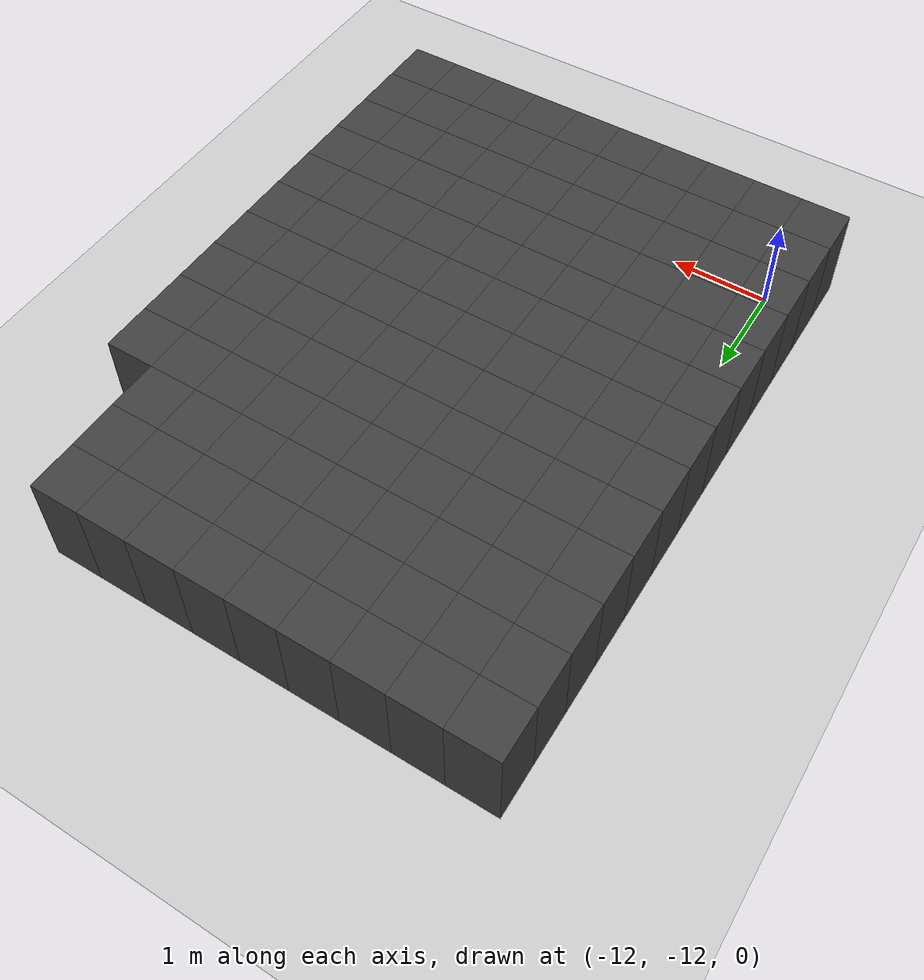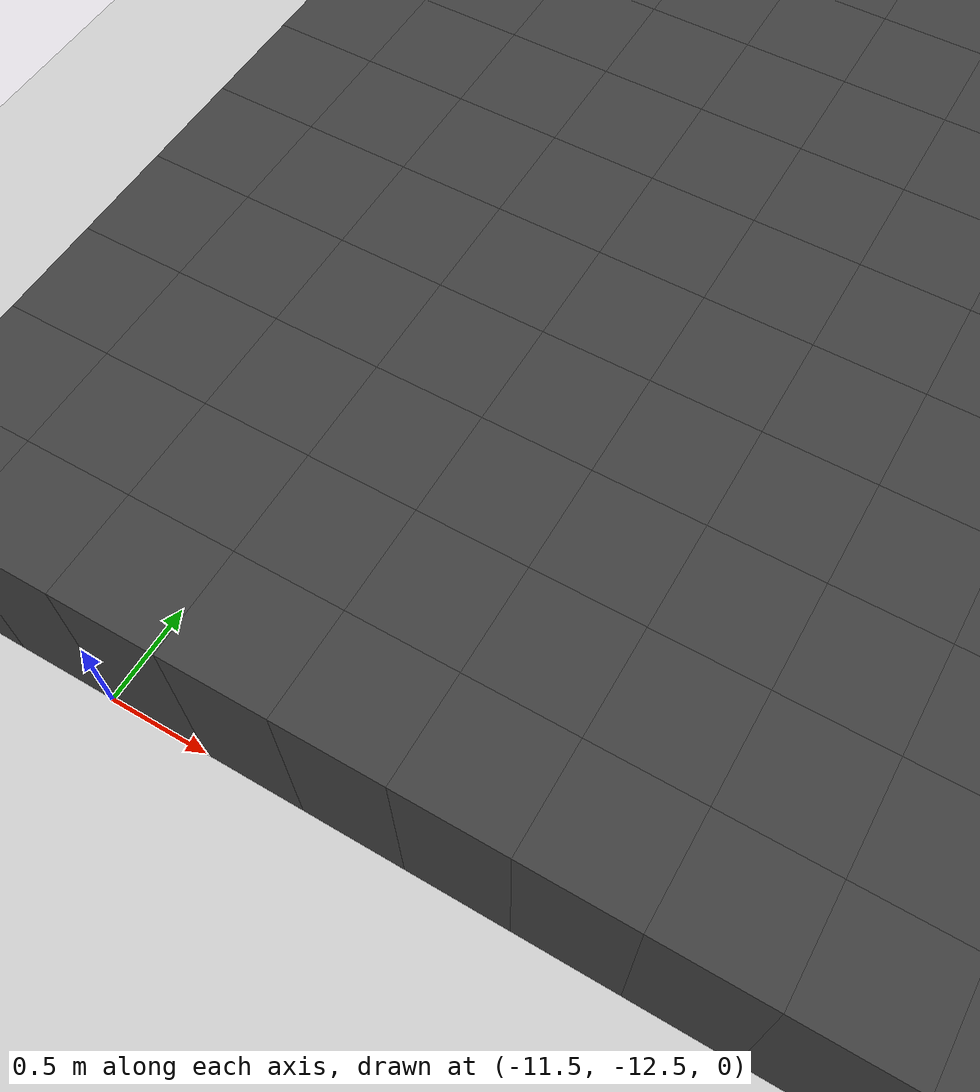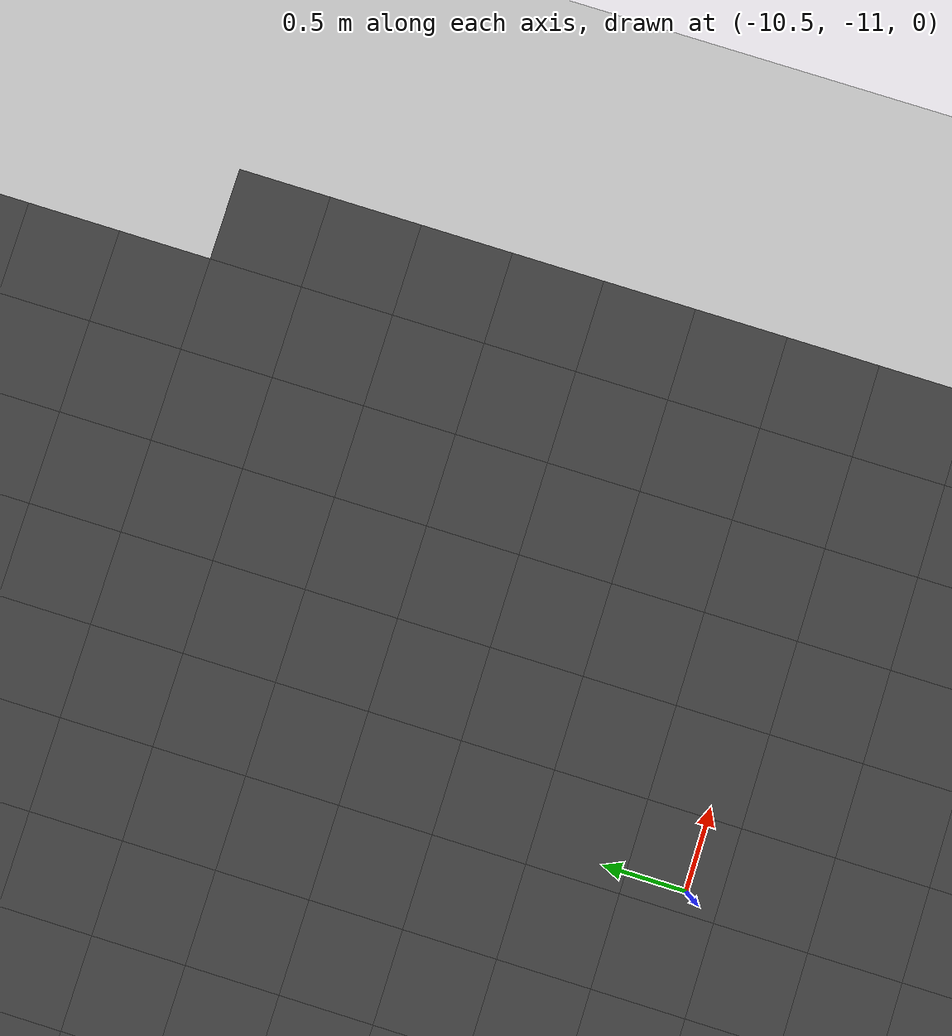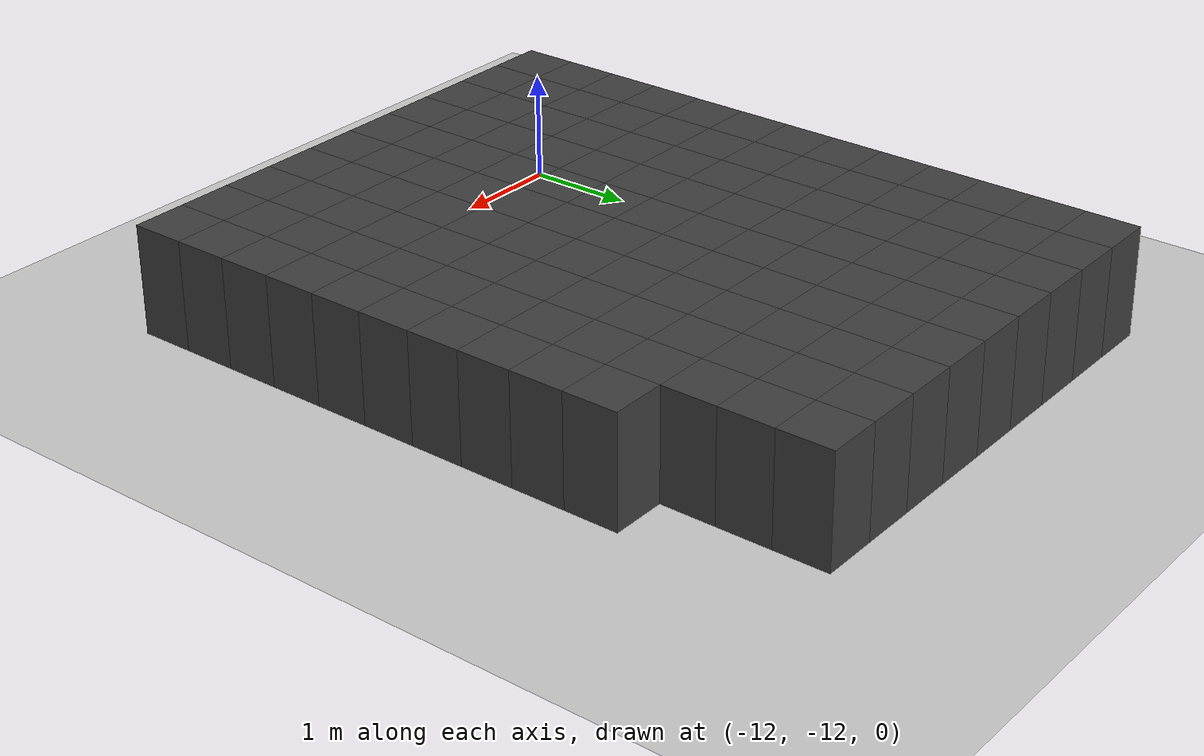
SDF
<sdf version="1.7">
 <world name="map_11515">
  <model name="ground_plane">
   <static>true</static>
   <link name="link">
    <collision name="collision">
     <geometry><plane><normal>0 0 1</normal><size>200 200</size></plane></geometry>
    </collision>
    <visual name="visual">
     <geometry><plane><normal>0 0 1</normal><size>200 200</size></plane></geometry>
     <material><ambient>0.8 0.8 0.8 1</ambient><diffuse>0.8 0.8 0.8 1</diffuse></material>
    </visual>
   </link>
  </model>
  <model name="maze_environment">
   <static>true</static>
   <link name="wall_1601">
    <pose>-12.250 -6.250 0.500 0 0 0</pose>
    <collision name="col"><geometry><box><size>0.5 0.5 1.0</size></box></geometry></collision>
    <visual name="vis">
     <geometry><box><size>0.5 0.5 1.0</size></box></geometry>
     <material><ambient>0.15 0.15 0.15 1</ambient><diffuse>0.25 0.25 0.25 1</diffuse></material>
    </visual>
   </link>
   <link name="wall_1602">
    <pose>-11.750 -6.250 0.500 0 0 0</pose>
    <collision name="col"><geometry><box><size>0.5 0.5 1.0</size></box></geometry></collision>
    <visual name="vis">
     <geometry><box><size>0.5 0.5 1.0</size></box></geometry>
     <material><ambient>0.15 0.15 0.15 1</ambient><diffuse>0.25 0.25 0.25 1</diffuse></material>
    </visual>
   </link>
   <link name="wall_1603">
    <pose>-11.250 -6.250 0.500 0 0 0</pose>
    <collision name="col"><geometry><box><size>0.5 0.5 1.0</size></box></geometry></collision>
    <visual name="vis">
     <geometry><box><size>0.5 0.5 1.0</size></box></geometry>
     <material><ambient>0.15 0.15 0.15 1</ambient><diffuse>0.25 0.25 0.25 1</diffuse></material>
    </visual>
   </link>
   <link name="wall_1604">
    <pose>-10.750 -6.250 0.500 0 0 0</pose>
    <collision name="col"><geometry><box><size>0.5 0.5 1.0</size></box></geometry></collision>
    <visual name="vis">
     <geometry><box><size>0.5 0.5 1.0</size></box></geometry>
     <material><ambient>0.15 0.15 0.15 1</ambient><diffuse>0.25 0.25 0.25 1</diffuse></material>
    </visual>
   </link>
   <link name="wall_1605">
    <pose>-10.250 -6.250 0.500 0 0 0</pose>
    <collision name="col"><geometry><box><size>0.5 0.5 1.0</size></box></geometry></collision>
    <visual name="vis">
     <geometry><box><size>0.5 0.5 1.0</size></box></geometry>
     <material><ambient>0.15 0.15 0.15 1</ambient><diffuse>0.25 0.25 0.25 1</diffuse></material>
    </visual>
   </link>
   <link name="wall_1606">
    <pose>-9.750 -6.250 0.500 0 0 0</pose>
    <collision name="col"><geometry><box><size>0.5 0.5 1.0</size></box></geometry></collision>
    <visual name="vis">
     <geometry><box><size>0.5 0.5 1.0</size></box></geometry>
     <material><ambient>0.15 0.15 0.15 1</ambient><diffuse>0.25 0.25 0.25 1</diffuse></material>
    </visual>
   </link>
   <link name="wall_1607">
    <pose>-9.250 -6.250 0.500 0 0 0</pose>
    <collision name="col"><geometry><box><size>0.5 0.5 1.0</size></box></geometry></collision>
    <visual name="vis">
     <geometry><box><size>0.5 0.5 1.0</size></box></geometry>
     <material><ambient>0.15 0.15 0.15 1</ambient><diffuse>0.25 0.25 0.25 1</diffuse></material>
    </visual>
   </link>
   <link name="wall_1608">
    <pose>-8.750 -6.250 0.500 0 0 0</pose>
    <collision name="col"><geometry><box><size>0.5 0.5 1.0</size></box></geometry></collision>
    <visual name="vis">
     <geometry><box><size>0.5 0.5 1.0</size></box></geometry>
     <material><ambient>0.15 0.15 0.15 1</ambient><diffuse>0.25 0.25 0.25 1</diffuse></material>
    </visual>
   </link>
   <link name="wall_1609">
    <pose>-8.250 -6.250 0.500 0 0 0</pose>
    <collision name="col"><geometry><box><size>0.5 0.5 1.0</size></box></geometry></collision>
    <visual name="vis">
     <geometry><box><size>0.5 0.5 1.0</size></box></geometry>
     <material><ambient>0.15 0.15 0.15 1</ambient><diffuse>0.25 0.25 0.25 1</diffuse></material>
    </visual>
   </link>
   <link name="wall_1650">
    <pose>-12.250 -6.750 0.500 0 0 0</pose>
    <collision name="col"><geometry><box><size>0.5 0.5 1.0</size></box></geometry></collision>
    <visual name="vis">
     <geometry><box><size>0.5 0.5 1.0</size></box></geometry>
     <material><ambient>0.15 0.15 0.15 1</ambient><diffuse>0.25 0.25 0.25 1</diffuse></material>
    </visual>
   </link>
   <link name="wall_1651">
    <pose>-11.750 -6.750 0.500 0 0 0</pose>
    <collision name="col"><geometry><box><size>0.5 0.5 1.0</size></box></geometry></collision>
    <visual name="vis">
     <geometry><box><size>0.5 0.5 1.0</size></box></geometry>
     <material><ambient>0.15 0.15 0.15 1</ambient><diffuse>0.25 0.25 0.25 1</diffuse></material>
    </visual>
   </link>
   <link name="wall_1652">
    <pose>-11.250 -6.750 0.500 0 0 0</pose>
    <collision name="col"><geometry><box><size>0.5 0.5 1.0</size></box></geometry></collision>
    <visual name="vis">
     <geometry><box><size>0.5 0.5 1.0</size></box></geometry>
     <material><ambient>0.15 0.15 0.15 1</ambient><diffuse>0.25 0.25 0.25 1</diffuse></material>
    </visual>
   </link>
   <link name="wall_1653">
    <pose>-10.750 -6.750 0.500 0 0 0</pose>
    <collision name="col"><geometry><box><size>0.5 0.5 1.0</size></box></geometry></collision>
    <visual name="vis">
     <geometry><box><size>0.5 0.5 1.0</size></box></geometry>
     <material><ambient>0.15 0.15 0.15 1</ambient><diffuse>0.25 0.25 0.25 1</diffuse></material>
    </visual>
   </link>
   <link name="wall_1654">
    <pose>-10.250 -6.750 0.500 0 0 0</pose>
    <collision name="col"><geometry><box><size>0.5 0.5 1.0</size></box></geometry></collision>
    <visual name="vis">
     <geometry><box><size>0.5 0.5 1.0</size></box></geometry>
     <material><ambient>0.15 0.15 0.15 1</ambient><diffuse>0.25 0.25 0.25 1</diffuse></material>
    </visual>
   </link>
   <link name="wall_1655">
    <pose>-9.750 -6.750 0.500 0 0 0</pose>
    <collision name="col"><geometry><box><size>0.5 0.5 1.0</size></box></geometry></collision>
    <visual name="vis">
     <geometry><box><size>0.5 0.5 1.0</size></box></geometry>
     <material><ambient>0.15 0.15 0.15 1</ambient><diffuse>0.25 0.25 0.25 1</diffuse></material>
    </visual>
   </link>
   <link name="wall_1656">
    <pose>-9.250 -6.750 0.500 0 0 0</pose>
    <collision name="col"><geometry><box><size>0.5 0.5 1.0</size></box></geometry></collision>
    <visual name="vis">
     <geometry><box><size>0.5 0.5 1.0</size></box></geometry>
     <material><ambient>0.15 0.15 0.15 1</ambient><diffuse>0.25 0.25 0.25 1</diffuse></material>
    </visual>
   </link>
   <link name="wall_1657">
    <pose>-8.750 -6.750 0.500 0 0 0</pose>
    <collision name="col"><geometry><box><size>0.5 0.5 1.0</size></box></geometry></collision>
    <visual name="vis">
     <geometry><box><size>0.5 0.5 1.0</size></box></geometry>
     <material><ambient>0.15 0.15 0.15 1</ambient><diffuse>0.25 0.25 0.25 1</diffuse></material>
    </visual>
   </link>
   <link name="wall_1658">
    <pose>-8.250 -6.750 0.500 0 0 0</pose>
    <collision name="col"><geometry><box><size>0.5 0.5 1.0</size></box></geometry></collision>
    <visual name="vis">
     <geometry><box><size>0.5 0.5 1.0</size></box></geometry>
     <material><ambient>0.15 0.15 0.15 1</ambient><diffuse>0.25 0.25 0.25 1</diffuse></material>
    </visual>
   </link>
   <link name="wall_1699">
    <pose>-12.250 -7.250 0.500 0 0 0</pose>
    <collision name="col"><geometry><box><size>0.5 0.5 1.0</size></box></geometry></collision>
    <visual name="vis">
     <geometry><box><size>0.5 0.5 1.0</size></box></geometry>
     <material><ambient>0.15 0.15 0.15 1</ambient><diffuse>0.25 0.25 0.25 1</diffuse></material>
    </visual>
   </link>
   <link name="wall_1700">
    <pose>-11.750 -7.250 0.500 0 0 0</pose>
    <collision name="col"><geometry><box><size>0.5 0.5 1.0</size></box></geometry></collision>
    <visual name="vis">
     <geometry><box><size>0.5 0.5 1.0</size></box></geometry>
     <material><ambient>0.15 0.15 0.15 1</ambient><diffuse>0.25 0.25 0.25 1</diffuse></material>
    </visual>
   </link>
   <link name="wall_1701">
    <pose>-11.250 -7.250 0.500 0 0 0</pose>
    <collision name="col"><geometry><box><size>0.5 0.5 1.0</size></box></geometry></collision>
    <visual name="vis">
     <geometry><box><size>0.5 0.5 1.0</size></box></geometry>
     <material><ambient>0.15 0.15 0.15 1</ambient><diffuse>0.25 0.25 0.25 1</diffuse></material>
    </visual>
   </link>
   <link name="wall_1702">
    <pose>-10.750 -7.250 0.500 0 0 0</pose>
    <collision name="col"><geometry><box><size>0.5 0.5 1.0</size></box></geometry></collision>
    <visual name="vis">
     <geometry><box><size>0.5 0.5 1.0</size></box></geometry>
     <material><ambient>0.15 0.15 0.15 1</ambient><diffuse>0.25 0.25 0.25 1</diffuse></material>
    </visual>
   </link>
   <link name="wall_1703">
    <pose>-10.250 -7.250 0.500 0 0 0</pose>
    <collision name="col"><geometry><box><size>0.5 0.5 1.0</size></box></geometry></collision>
    <visual name="vis">
     <geometry><box><size>0.5 0.5 1.0</size></box></geometry>
     <material><ambient>0.15 0.15 0.15 1</ambient><diffuse>0.25 0.25 0.25 1</diffuse></material>
    </visual>
   </link>
   <link name="wall_1704">
    <pose>-9.750 -7.250 0.500 0 0 0</pose>
    <collision name="col"><geometry><box><size>0.5 0.5 1.0</size></box></geometry></collision>
    <visual name="vis">
     <geometry><box><size>0.5 0.5 1.0</size></box></geometry>
     <material><ambient>0.15 0.15 0.15 1</ambient><diffuse>0.25 0.25 0.25 1</diffuse></material>
    </visual>
   </link>
   <link name="wall_1705">
    <pose>-9.250 -7.250 0.500 0 0 0</pose>
    <collision name="col"><geometry><box><size>0.5 0.5 1.0</size></box></geometry></collision>
    <visual name="vis">
     <geometry><box><size>0.5 0.5 1.0</size></box></geometry>
     <material><ambient>0.15 0.15 0.15 1</ambient><diffuse>0.25 0.25 0.25 1</diffuse></material>
    </visual>
   </link>
   <link name="wall_1706">
    <pose>-8.750 -7.250 0.500 0 0 0</pose>
    <collision name="col"><geometry><box><size>0.5 0.5 1.0</size></box></geometry></collision>
    <visual name="vis">
     <geometry><box><size>0.5 0.5 1.0</size></box></geometry>
     <material><ambient>0.15 0.15 0.15 1</ambient><diffuse>0.25 0.25 0.25 1</diffuse></material>
    </visual>
   </link>
   <link name="wall_1707">
    <pose>-8.250 -7.250 0.500 0 0 0</pose>
    <collision name="col"><geometry><box><size>0.5 0.5 1.0</size></box></geometry></collision>
    <visual name="vis">
     <geometry><box><size>0.5 0.5 1.0</size></box></geometry>
     <material><ambient>0.15 0.15 0.15 1</ambient><diffuse>0.25 0.25 0.25 1</diffuse></material>
    </visual>
   </link>
   <link name="wall_1748">
    <pose>-12.250 -7.750 0.500 0 0 0</pose>
    <collision name="col"><geometry><box><size>0.5 0.5 1.0</size></box></geometry></collision>
    <visual name="vis">
     <geometry><box><size>0.5 0.5 1.0</size></box></geometry>
     <material><ambient>0.15 0.15 0.15 1</ambient><diffuse>0.25 0.25 0.25 1</diffuse></material>
    </visual>
   </link>
   <link name="wall_1749">
    <pose>-11.750 -7.750 0.500 0 0 0</pose>
    <collision name="col"><geometry><box><size>0.5 0.5 1.0</size></box></geometry></collision>
    <visual name="vis">
     <geometry><box><size>0.5 0.5 1.0</size></box></geometry>
     <material><ambient>0.15 0.15 0.15 1</ambient><diffuse>0.25 0.25 0.25 1</diffuse></material>
    </visual>
   </link>
   <link name="wall_1750">
    <pose>-11.250 -7.750 0.500 0 0 0</pose>
    <collision name="col"><geometry><box><size>0.5 0.5 1.0</size></box></geometry></collision>
    <visual name="vis">
     <geometry><box><size>0.5 0.5 1.0</size></box></geometry>
     <material><ambient>0.15 0.15 0.15 1</ambient><diffuse>0.25 0.25 0.25 1</diffuse></material>
    </visual>
   </link>
   <link name="wall_1751">
    <pose>-10.750 -7.750 0.500 0 0 0</pose>
    <collision name="col"><geometry><box><size>0.5 0.5 1.0</size></box></geometry></collision>
    <visual name="vis">
     <geometry><box><size>0.5 0.5 1.0</size></box></geometry>
     <material><ambient>0.15 0.15 0.15 1</ambient><diffuse>0.25 0.25 0.25 1</diffuse></material>
    </visual>
   </link>
   <link name="wall_1752">
    <pose>-10.250 -7.750 0.500 0 0 0</pose>
    <collision name="col"><geometry><box><size>0.5 0.5 1.0</size></box></geometry></collision>
    <visual name="vis">
     <geometry><box><size>0.5 0.5 1.0</size></box></geometry>
     <material><ambient>0.15 0.15 0.15 1</ambient><diffuse>0.25 0.25 0.25 1</diffuse></material>
    </visual>
   </link>
   <link name="wall_1753">
    <pose>-9.750 -7.750 0.500 0 0 0</pose>
    <collision name="col"><geometry><box><size>0.5 0.5 1.0</size></box></geometry></collision>
    <visual name="vis">
     <geometry><box><size>0.5 0.5 1.0</size></box></geometry>
     <material><ambient>0.15 0.15 0.15 1</ambient><diffuse>0.25 0.25 0.25 1</diffuse></material>
    </visual>
   </link>
   <link name="wall_1754">
    <pose>-9.250 -7.750 0.500 0 0 0</pose>
    <collision name="col"><geometry><box><size>0.5 0.5 1.0</size></box></geometry></collision>
    <visual name="vis">
     <geometry><box><size>0.5 0.5 1.0</size></box></geometry>
     <material><ambient>0.15 0.15 0.15 1</ambient><diffuse>0.25 0.25 0.25 1</diffuse></material>
    </visual>
   </link>
   <link name="wall_1755">
    <pose>-8.750 -7.750 0.500 0 0 0</pose>
    <collision name="col"><geometry><box><size>0.5 0.5 1.0</size></box></geometry></collision>
    <visual name="vis">
     <geometry><box><size>0.5 0.5 1.0</size></box></geometry>
     <material><ambient>0.15 0.15 0.15 1</ambient><diffuse>0.25 0.25 0.25 1</diffuse></material>
    </visual>
   </link>
   <link name="wall_1756">
    <pose>-8.250 -7.750 0.500 0 0 0</pose>
    <collision name="col"><geometry><box><size>0.5 0.5 1.0</size></box></geometry></collision>
    <visual name="vis">
     <geometry><box><size>0.5 0.5 1.0</size></box></geometry>
     <material><ambient>0.15 0.15 0.15 1</ambient><diffuse>0.25 0.25 0.25 1</diffuse></material>
    </visual>
   </link>
   <link name="wall_1757">
    <pose>-7.750 -7.750 0.500 0 0 0</pose>
    <collision name="col"><geometry><box><size>0.5 0.5 1.0</size></box></geometry></collision>
    <visual name="vis">
     <geometry><box><size>0.5 0.5 1.0</size></box></geometry>
     <material><ambient>0.15 0.15 0.15 1</ambient><diffuse>0.25 0.25 0.25 1</diffuse></material>
    </visual>
   </link>
   <link name="wall_1797">
    <pose>-12.250 -8.250 0.500 0 0 0</pose>
    <collision name="col"><geometry><box><size>0.5 0.5 1.0</size></box></geometry></collision>
    <visual name="vis">
     <geometry><box><size>0.5 0.5 1.0</size></box></geometry>
     <material><ambient>0.15 0.15 0.15 1</ambient><diffuse>0.25 0.25 0.25 1</diffuse></material>
    </visual>
   </link>
   <link name="wall_1798">
    <pose>-11.750 -8.250 0.500 0 0 0</pose>
    <collision name="col"><geometry><box><size>0.5 0.5 1.0</size></box></geometry></collision>
    <visual name="vis">
     <geometry><box><size>0.5 0.5 1.0</size></box></geometry>
     <material><ambient>0.15 0.15 0.15 1</ambient><diffuse>0.25 0.25 0.25 1</diffuse></material>
    </visual>
   </link>
   <link name="wall_1799">
    <pose>-11.250 -8.250 0.500 0 0 0</pose>
    <collision name="col"><geometry><box><size>0.5 0.5 1.0</size></box></geometry></collision>
    <visual name="vis">
     <geometry><box><size>0.5 0.5 1.0</size></box></geometry>
     <material><ambient>0.15 0.15 0.15 1</ambient><diffuse>0.25 0.25 0.25 1</diffuse></material>
    </visual>
   </link>
   <link name="wall_1800">
    <pose>-10.750 -8.250 0.500 0 0 0</pose>
    <collision name="col"><geometry><box><size>0.5 0.5 1.0</size></box></geometry></collision>
    <visual name="vis">
     <geometry><box><size>0.5 0.5 1.0</size></box></geometry>
     <material><ambient>0.15 0.15 0.15 1</ambient><diffuse>0.25 0.25 0.25 1</diffuse></material>
    </visual>
   </link>
   <link name="wall_1801">
    <pose>-10.250 -8.250 0.500 0 0 0</pose>
    <collision name="col"><geometry><box><size>0.5 0.5 1.0</size></box></geometry></collision>
    <visual name="vis">
     <geometry><box><size>0.5 0.5 1.0</size></box></geometry>
     <material><ambient>0.15 0.15 0.15 1</ambient><diffuse>0.25 0.25 0.25 1</diffuse></material>
    </visual>
   </link>
   <link name="wall_1802">
    <pose>-9.750 -8.250 0.500 0 0 0</pose>
    <collision name="col"><geometry><box><size>0.5 0.5 1.0</size></box></geometry></collision>
    <visual name="vis">
     <geometry><box><size>0.5 0.5 1.0</size></box></geometry>
     <material><ambient>0.15 0.15 0.15 1</ambient><diffuse>0.25 0.25 0.25 1</diffuse></material>
    </visual>
   </link>
   <link name="wall_1803">
    <pose>-9.250 -8.250 0.500 0 0 0</pose>
    <collision name="col"><geometry><box><size>0.5 0.5 1.0</size></box></geometry></collision>
    <visual name="vis">
     <geometry><box><size>0.5 0.5 1.0</size></box></geometry>
     <material><ambient>0.15 0.15 0.15 1</ambient><diffuse>0.25 0.25 0.25 1</diffuse></material>
    </visual>
   </link>
   <link name="wall_1804">
    <pose>-8.750 -8.250 0.500 0 0 0</pose>
    <collision name="col"><geometry><box><size>0.5 0.5 1.0</size></box></geometry></collision>
    <visual name="vis">
     <geometry><box><size>0.5 0.5 1.0</size></box></geometry>
     <material><ambient>0.15 0.15 0.15 1</ambient><diffuse>0.25 0.25 0.25 1</diffuse></material>
    </visual>
   </link>
   <link name="wall_1805">
    <pose>-8.250 -8.250 0.500 0 0 0</pose>
    <collision name="col"><geometry><box><size>0.5 0.5 1.0</size></box></geometry></collision>
    <visual name="vis">
     <geometry><box><size>0.5 0.5 1.0</size></box></geometry>
     <material><ambient>0.15 0.15 0.15 1</ambient><diffuse>0.25 0.25 0.25 1</diffuse></material>
    </visual>
   </link>
   <link name="wall_1806">
    <pose>-7.750 -8.250 0.500 0 0 0</pose>
    <collision name="col"><geometry><box><size>0.5 0.5 1.0</size></box></geometry></collision>
    <visual name="vis">
     <geometry><box><size>0.5 0.5 1.0</size></box></geometry>
     <material><ambient>0.15 0.15 0.15 1</ambient><diffuse>0.25 0.25 0.25 1</diffuse></material>
    </visual>
   </link>
   <link name="wall_1846">
    <pose>-12.250 -8.750 0.500 0 0 0</pose>
    <collision name="col"><geometry><box><size>0.5 0.5 1.0</size></box></geometry></collision>
    <visual name="vis">
     <geometry><box><size>0.5 0.5 1.0</size></box></geometry>
     <material><ambient>0.15 0.15 0.15 1</ambient><diffuse>0.25 0.25 0.25 1</diffuse></material>
    </visual>
   </link>
   <link name="wall_1847">
    <pose>-11.750 -8.750 0.500 0 0 0</pose>
    <collision name="col"><geometry><box><size>0.5 0.5 1.0</size></box></geometry></collision>
    <visual name="vis">
     <geometry><box><size>0.5 0.5 1.0</size></box></geometry>
     <material><ambient>0.15 0.15 0.15 1</ambient><diffuse>0.25 0.25 0.25 1</diffuse></material>
    </visual>
   </link>
   <link name="wall_1848">
    <pose>-11.250 -8.750 0.500 0 0 0</pose>
    <collision name="col"><geometry><box><size>0.5 0.5 1.0</size></box></geometry></collision>
    <visual name="vis">
     <geometry><box><size>0.5 0.5 1.0</size></box></geometry>
     <material><ambient>0.15 0.15 0.15 1</ambient><diffuse>0.25 0.25 0.25 1</diffuse></material>
    </visual>
   </link>
   <link name="wall_1849">
    <pose>-10.750 -8.750 0.500 0 0 0</pose>
    <collision name="col"><geometry><box><size>0.5 0.5 1.0</size></box></geometry></collision>
    <visual name="vis">
     <geometry><box><size>0.5 0.5 1.0</size></box></geometry>
     <material><ambient>0.15 0.15 0.15 1</ambient><diffuse>0.25 0.25 0.25 1</diffuse></material>
    </visual>
   </link>
   <link name="wall_1850">
    <pose>-10.250 -8.750 0.500 0 0 0</pose>
    <collision name="col"><geometry><box><size>0.5 0.5 1.0</size></box></geometry></collision>
    <visual name="vis">
     <geometry><box><size>0.5 0.5 1.0</size></box></geometry>
     <material><ambient>0.15 0.15 0.15 1</ambient><diffuse>0.25 0.25 0.25 1</diffuse></material>
    </visual>
   </link>
   <link name="wall_1851">
    <pose>-9.750 -8.750 0.500 0 0 0</pose>
    <collision name="col"><geometry><box><size>0.5 0.5 1.0</size></box></geometry></collision>
    <visual name="vis">
     <geometry><box><size>0.5 0.5 1.0</size></box></geometry>
     <material><ambient>0.15 0.15 0.15 1</ambient><diffuse>0.25 0.25 0.25 1</diffuse></material>
    </visual>
   </link>
   <link name="wall_1852">
    <pose>-9.250 -8.750 0.500 0 0 0</pose>
    <collision name="col"><geometry><box><size>0.5 0.5 1.0</size></box></geometry></collision>
    <visual name="vis">
     <geometry><box><size>0.5 0.5 1.0</size></box></geometry>
     <material><ambient>0.15 0.15 0.15 1</ambient><diffuse>0.25 0.25 0.25 1</diffuse></material>
    </visual>
   </link>
   <link name="wall_1853">
    <pose>-8.750 -8.750 0.500 0 0 0</pose>
    <collision name="col"><geometry><box><size>0.5 0.5 1.0</size></box></geometry></collision>
    <visual name="vis">
     <geometry><box><size>0.5 0.5 1.0</size></box></geometry>
     <material><ambient>0.15 0.15 0.15 1</ambient><diffuse>0.25 0.25 0.25 1</diffuse></material>
    </visual>
   </link>
   <link name="wall_1854">
    <pose>-8.250 -8.750 0.500 0 0 0</pose>
    <collision name="col"><geometry><box><size>0.5 0.5 1.0</size></box></geometry></collision>
    <visual name="vis">
     <geometry><box><size>0.5 0.5 1.0</size></box></geometry>
     <material><ambient>0.15 0.15 0.15 1</ambient><diffuse>0.25 0.25 0.25 1</diffuse></material>
    </visual>
   </link>
   <link name="wall_1855">
    <pose>-7.750 -8.750 0.500 0 0 0</pose>
    <collision name="col"><geometry><box><size>0.5 0.5 1.0</size></box></geometry></collision>
    <visual name="vis">
     <geometry><box><size>0.5 0.5 1.0</size></box></geometry>
     <material><ambient>0.15 0.15 0.15 1</ambient><diffuse>0.25 0.25 0.25 1</diffuse></material>
    </visual>
   </link>
   <link name="wall_1889">
    <pose>-12.250 -9.250 0.500 0 0 0</pose>
    <collision name="col"><geometry><box><size>0.5 0.5 1.0</size></box></geometry></collision>
    <visual name="vis">
     <geometry><box><size>0.5 0.5 1.0</size></box></geometry>
     <material><ambient>0.15 0.15 0.15 1</ambient><diffuse>0.25 0.25 0.25 1</diffuse></material>
    </visual>
   </link>
   <link name="wall_1890">
    <pose>-11.750 -9.250 0.500 0 0 0</pose>
    <collision name="col"><geometry><box><size>0.5 0.5 1.0</size></box></geometry></collision>
    <visual name="vis">
     <geometry><box><size>0.5 0.5 1.0</size></box></geometry>
     <material><ambient>0.15 0.15 0.15 1</ambient><diffuse>0.25 0.25 0.25 1</diffuse></material>
    </visual>
   </link>
   <link name="wall_1891">
    <pose>-11.250 -9.250 0.500 0 0 0</pose>
    <collision name="col"><geometry><box><size>0.5 0.5 1.0</size></box></geometry></collision>
    <visual name="vis">
     <geometry><box><size>0.5 0.5 1.0</size></box></geometry>
     <material><ambient>0.15 0.15 0.15 1</ambient><diffuse>0.25 0.25 0.25 1</diffuse></material>
    </visual>
   </link>
   <link name="wall_1892">
    <pose>-10.750 -9.250 0.500 0 0 0</pose>
    <collision name="col"><geometry><box><size>0.5 0.5 1.0</size></box></geometry></collision>
    <visual name="vis">
     <geometry><box><size>0.5 0.5 1.0</size></box></geometry>
     <material><ambient>0.15 0.15 0.15 1</ambient><diffuse>0.25 0.25 0.25 1</diffuse></material>
    </visual>
   </link>
   <link name="wall_1893">
    <pose>-10.250 -9.250 0.500 0 0 0</pose>
    <collision name="col"><geometry><box><size>0.5 0.5 1.0</size></box></geometry></collision>
    <visual name="vis">
     <geometry><box><size>0.5 0.5 1.0</size></box></geometry>
     <material><ambient>0.15 0.15 0.15 1</ambient><diffuse>0.25 0.25 0.25 1</diffuse></material>
    </visual>
   </link>
   <link name="wall_1894">
    <pose>-9.750 -9.250 0.500 0 0 0</pose>
    <collision name="col"><geometry><box><size>0.5 0.5 1.0</size></box></geometry></collision>
    <visual name="vis">
     <geometry><box><size>0.5 0.5 1.0</size></box></geometry>
     <material><ambient>0.15 0.15 0.15 1</ambient><diffuse>0.25 0.25 0.25 1</diffuse></material>
    </visual>
   </link>
   <link name="wall_1895">
    <pose>-9.250 -9.250 0.500 0 0 0</pose>
    <collision name="col"><geometry><box><size>0.5 0.5 1.0</size></box></geometry></collision>
    <visual name="vis">
     <geometry><box><size>0.5 0.5 1.0</size></box></geometry>
     <material><ambient>0.15 0.15 0.15 1</ambient><diffuse>0.25 0.25 0.25 1</diffuse></material>
    </visual>
   </link>
   <link name="wall_1896">
    <pose>-8.750 -9.250 0.500 0 0 0</pose>
    <collision name="col"><geometry><box><size>0.5 0.5 1.0</size></box></geometry></collision>
    <visual name="vis">
     <geometry><box><size>0.5 0.5 1.0</size></box></geometry>
     <material><ambient>0.15 0.15 0.15 1</ambient><diffuse>0.25 0.25 0.25 1</diffuse></material>
    </visual>
   </link>
   <link name="wall_1897">
    <pose>-8.250 -9.250 0.500 0 0 0</pose>
    <collision name="col"><geometry><box><size>0.5 0.5 1.0</size></box></geometry></collision>
    <visual name="vis">
     <geometry><box><size>0.5 0.5 1.0</size></box></geometry>
     <material><ambient>0.15 0.15 0.15 1</ambient><diffuse>0.25 0.25 0.25 1</diffuse></material>
    </visual>
   </link>
   <link name="wall_1898">
    <pose>-7.750 -9.250 0.500 0 0 0</pose>
    <collision name="col"><geometry><box><size>0.5 0.5 1.0</size></box></geometry></collision>
    <visual name="vis">
     <geometry><box><size>0.5 0.5 1.0</size></box></geometry>
     <material><ambient>0.15 0.15 0.15 1</ambient><diffuse>0.25 0.25 0.25 1</diffuse></material>
    </visual>
   </link>
   <link name="wall_1932">
    <pose>-12.250 -9.750 0.500 0 0 0</pose>
    <collision name="col"><geometry><box><size>0.5 0.5 1.0</size></box></geometry></collision>
    <visual name="vis">
     <geometry><box><size>0.5 0.5 1.0</size></box></geometry>
     <material><ambient>0.15 0.15 0.15 1</ambient><diffuse>0.25 0.25 0.25 1</diffuse></material>
    </visual>
   </link>
   <link name="wall_1933">
    <pose>-11.750 -9.750 0.500 0 0 0</pose>
    <collision name="col"><geometry><box><size>0.5 0.5 1.0</size></box></geometry></collision>
    <visual name="vis">
     <geometry><box><size>0.5 0.5 1.0</size></box></geometry>
     <material><ambient>0.15 0.15 0.15 1</ambient><diffuse>0.25 0.25 0.25 1</diffuse></material>
    </visual>
   </link>
   <link name="wall_1934">
    <pose>-11.250 -9.750 0.500 0 0 0</pose>
    <collision name="col"><geometry><box><size>0.5 0.5 1.0</size></box></geometry></collision>
    <visual name="vis">
     <geometry><box><size>0.5 0.5 1.0</size></box></geometry>
     <material><ambient>0.15 0.15 0.15 1</ambient><diffuse>0.25 0.25 0.25 1</diffuse></material>
    </visual>
   </link>
   <link name="wall_1935">
    <pose>-10.750 -9.750 0.500 0 0 0</pose>
    <collision name="col"><geometry><box><size>0.5 0.5 1.0</size></box></geometry></collision>
    <visual name="vis">
     <geometry><box><size>0.5 0.5 1.0</size></box></geometry>
     <material><ambient>0.15 0.15 0.15 1</ambient><diffuse>0.25 0.25 0.25 1</diffuse></material>
    </visual>
   </link>
   <link name="wall_1936">
    <pose>-10.250 -9.750 0.500 0 0 0</pose>
    <collision name="col"><geometry><box><size>0.5 0.5 1.0</size></box></geometry></collision>
    <visual name="vis">
     <geometry><box><size>0.5 0.5 1.0</size></box></geometry>
     <material><ambient>0.15 0.15 0.15 1</ambient><diffuse>0.25 0.25 0.25 1</diffuse></material>
    </visual>
   </link>
   <link name="wall_1937">
    <pose>-9.750 -9.750 0.500 0 0 0</pose>
    <collision name="col"><geometry><box><size>0.5 0.5 1.0</size></box></geometry></collision>
    <visual name="vis">
     <geometry><box><size>0.5 0.5 1.0</size></box></geometry>
     <material><ambient>0.15 0.15 0.15 1</ambient><diffuse>0.25 0.25 0.25 1</diffuse></material>
    </visual>
   </link>
   <link name="wall_1938">
    <pose>-9.250 -9.750 0.500 0 0 0</pose>
    <collision name="col"><geometry><box><size>0.5 0.5 1.0</size></box></geometry></collision>
    <visual name="vis">
     <geometry><box><size>0.5 0.5 1.0</size></box></geometry>
     <material><ambient>0.15 0.15 0.15 1</ambient><diffuse>0.25 0.25 0.25 1</diffuse></material>
    </visual>
   </link>
   <link name="wall_1939">
    <pose>-8.750 -9.750 0.500 0 0 0</pose>
    <collision name="col"><geometry><box><size>0.5 0.5 1.0</size></box></geometry></collision>
    <visual name="vis">
     <geometry><box><size>0.5 0.5 1.0</size></box></geometry>
     <material><ambient>0.15 0.15 0.15 1</ambient><diffuse>0.25 0.25 0.25 1</diffuse></material>
    </visual>
   </link>
   <link name="wall_1940">
    <pose>-8.250 -9.750 0.500 0 0 0</pose>
    <collision name="col"><geometry><box><size>0.5 0.5 1.0</size></box></geometry></collision>
    <visual name="vis">
     <geometry><box><size>0.5 0.5 1.0</size></box></geometry>
     <material><ambient>0.15 0.15 0.15 1</ambient><diffuse>0.25 0.25 0.25 1</diffuse></material>
    </visual>
   </link>
   <link name="wall_1941">
    <pose>-7.750 -9.750 0.500 0 0 0</pose>
    <collision name="col"><geometry><box><size>0.5 0.5 1.0</size></box></geometry></collision>
    <visual name="vis">
     <geometry><box><size>0.5 0.5 1.0</size></box></geometry>
     <material><ambient>0.15 0.15 0.15 1</ambient><diffuse>0.25 0.25 0.25 1</diffuse></material>
    </visual>
   </link>
   <link name="wall_1974">
    <pose>-12.250 -10.250 0.500 0 0 0</pose>
    <collision name="col"><geometry><box><size>0.5 0.5 1.0</size></box></geometry></collision>
    <visual name="vis">
     <geometry><box><size>0.5 0.5 1.0</size></box></geometry>
     <material><ambient>0.15 0.15 0.15 1</ambient><diffuse>0.25 0.25 0.25 1</diffuse></material>
    </visual>
   </link>
   <link name="wall_1975">
    <pose>-11.750 -10.250 0.500 0 0 0</pose>
    <collision name="col"><geometry><box><size>0.5 0.5 1.0</size></box></geometry></collision>
    <visual name="vis">
     <geometry><box><size>0.5 0.5 1.0</size></box></geometry>
     <material><ambient>0.15 0.15 0.15 1</ambient><diffuse>0.25 0.25 0.25 1</diffuse></material>
    </visual>
   </link>
   <link name="wall_1976">
    <pose>-11.250 -10.250 0.500 0 0 0</pose>
    <collision name="col"><geometry><box><size>0.5 0.5 1.0</size></box></geometry></collision>
    <visual name="vis">
     <geometry><box><size>0.5 0.5 1.0</size></box></geometry>
     <material><ambient>0.15 0.15 0.15 1</ambient><diffuse>0.25 0.25 0.25 1</diffuse></material>
    </visual>
   </link>
   <link name="wall_1977">
    <pose>-10.750 -10.250 0.500 0 0 0</pose>
    <collision name="col"><geometry><box><size>0.5 0.5 1.0</size></box></geometry></collision>
    <visual name="vis">
     <geometry><box><size>0.5 0.5 1.0</size></box></geometry>
     <material><ambient>0.15 0.15 0.15 1</ambient><diffuse>0.25 0.25 0.25 1</diffuse></material>
    </visual>
   </link>
   <link name="wall_1978">
    <pose>-10.250 -10.250 0.500 0 0 0</pose>
    <collision name="col"><geometry><box><size>0.5 0.5 1.0</size></box></geometry></collision>
    <visual name="vis">
     <geometry><box><size>0.5 0.5 1.0</size></box></geometry>
     <material><ambient>0.15 0.15 0.15 1</ambient><diffuse>0.25 0.25 0.25 1</diffuse></material>
    </visual>
   </link>
   <link name="wall_1979">
    <pose>-9.750 -10.250 0.500 0 0 0</pose>
    <collision name="col"><geometry><box><size>0.5 0.5 1.0</size></box></geometry></collision>
    <visual name="vis">
     <geometry><box><size>0.5 0.5 1.0</size></box></geometry>
     <material><ambient>0.15 0.15 0.15 1</ambient><diffuse>0.25 0.25 0.25 1</diffuse></material>
    </visual>
   </link>
   <link name="wall_1980">
    <pose>-9.250 -10.250 0.500 0 0 0</pose>
    <collision name="col"><geometry><box><size>0.5 0.5 1.0</size></box></geometry></collision>
    <visual name="vis">
     <geometry><box><size>0.5 0.5 1.0</size></box></geometry>
     <material><ambient>0.15 0.15 0.15 1</ambient><diffuse>0.25 0.25 0.25 1</diffuse></material>
    </visual>
   </link>
   <link name="wall_1981">
    <pose>-8.750 -10.250 0.500 0 0 0</pose>
    <collision name="col"><geometry><box><size>0.5 0.5 1.0</size></box></geometry></collision>
    <visual name="vis">
     <geometry><box><size>0.5 0.5 1.0</size></box></geometry>
     <material><ambient>0.15 0.15 0.15 1</ambient><diffuse>0.25 0.25 0.25 1</diffuse></material>
    </visual>
   </link>
   <link name="wall_1982">
    <pose>-8.250 -10.250 0.500 0 0 0</pose>
    <collision name="col"><geometry><box><size>0.5 0.5 1.0</size></box></geometry></collision>
    <visual name="vis">
     <geometry><box><size>0.5 0.5 1.0</size></box></geometry>
     <material><ambient>0.15 0.15 0.15 1</ambient><diffuse>0.25 0.25 0.25 1</diffuse></material>
    </visual>
   </link>
   <link name="wall_1983">
    <pose>-7.750 -10.250 0.500 0 0 0</pose>
    <collision name="col"><geometry><box><size>0.5 0.5 1.0</size></box></geometry></collision>
    <visual name="vis">
     <geometry><box><size>0.5 0.5 1.0</size></box></geometry>
     <material><ambient>0.15 0.15 0.15 1</ambient><diffuse>0.25 0.25 0.25 1</diffuse></material>
    </visual>
   </link>
   <link name="wall_2018">
    <pose>-12.250 -10.750 0.500 0 0 0</pose>
    <collision name="col"><geometry><box><size>0.5 0.5 1.0</size></box></geometry></collision>
    <visual name="vis">
     <geometry><box><size>0.5 0.5 1.0</size></box></geometry>
     <material><ambient>0.15 0.15 0.15 1</ambient><diffuse>0.25 0.25 0.25 1</diffuse></material>
    </visual>
   </link>
   <link name="wall_2019">
    <pose>-11.750 -10.750 0.500 0 0 0</pose>
    <collision name="col"><geometry><box><size>0.5 0.5 1.0</size></box></geometry></collision>
    <visual name="vis">
     <geometry><box><size>0.5 0.5 1.0</size></box></geometry>
     <material><ambient>0.15 0.15 0.15 1</ambient><diffuse>0.25 0.25 0.25 1</diffuse></material>
    </visual>
   </link>
   <link name="wall_2020">
    <pose>-11.250 -10.750 0.500 0 0 0</pose>
    <collision name="col"><geometry><box><size>0.5 0.5 1.0</size></box></geometry></collision>
    <visual name="vis">
     <geometry><box><size>0.5 0.5 1.0</size></box></geometry>
     <material><ambient>0.15 0.15 0.15 1</ambient><diffuse>0.25 0.25 0.25 1</diffuse></material>
    </visual>
   </link>
   <link name="wall_2021">
    <pose>-10.750 -10.750 0.500 0 0 0</pose>
    <collision name="col"><geometry><box><size>0.5 0.5 1.0</size></box></geometry></collision>
    <visual name="vis">
     <geometry><box><size>0.5 0.5 1.0</size></box></geometry>
     <material><ambient>0.15 0.15 0.15 1</ambient><diffuse>0.25 0.25 0.25 1</diffuse></material>
    </visual>
   </link>
   <link name="wall_2022">
    <pose>-10.250 -10.750 0.500 0 0 0</pose>
    <collision name="col"><geometry><box><size>0.5 0.5 1.0</size></box></geometry></collision>
    <visual name="vis">
     <geometry><box><size>0.5 0.5 1.0</size></box></geometry>
     <material><ambient>0.15 0.15 0.15 1</ambient><diffuse>0.25 0.25 0.25 1</diffuse></material>
    </visual>
   </link>
   <link name="wall_2023">
    <pose>-9.750 -10.750 0.500 0 0 0</pose>
    <collision name="col"><geometry><box><size>0.5 0.5 1.0</size></box></geometry></collision>
    <visual name="vis">
     <geometry><box><size>0.5 0.5 1.0</size></box></geometry>
     <material><ambient>0.15 0.15 0.15 1</ambient><diffuse>0.25 0.25 0.25 1</diffuse></material>
    </visual>
   </link>
   <link name="wall_2024">
    <pose>-9.250 -10.750 0.500 0 0 0</pose>
    <collision name="col"><geometry><box><size>0.5 0.5 1.0</size></box></geometry></collision>
    <visual name="vis">
     <geometry><box><size>0.5 0.5 1.0</size></box></geometry>
     <material><ambient>0.15 0.15 0.15 1</ambient><diffuse>0.25 0.25 0.25 1</diffuse></material>
    </visual>
   </link>
   <link name="wall_2025">
    <pose>-8.750 -10.750 0.500 0 0 0</pose>
    <collision name="col"><geometry><box><size>0.5 0.5 1.0</size></box></geometry></collision>
    <visual name="vis">
     <geometry><box><size>0.5 0.5 1.0</size></box></geometry>
     <material><ambient>0.15 0.15 0.15 1</ambient><diffuse>0.25 0.25 0.25 1</diffuse></material>
    </visual>
   </link>
   <link name="wall_2026">
    <pose>-8.250 -10.750 0.500 0 0 0</pose>
    <collision name="col"><geometry><box><size>0.5 0.5 1.0</size></box></geometry></collision>
    <visual name="vis">
     <geometry><box><size>0.5 0.5 1.0</size></box></geometry>
     <material><ambient>0.15 0.15 0.15 1</ambient><diffuse>0.25 0.25 0.25 1</diffuse></material>
    </visual>
   </link>
   <link name="wall_2027">
    <pose>-7.750 -10.750 0.500 0 0 0</pose>
    <collision name="col"><geometry><box><size>0.5 0.5 1.0</size></box></geometry></collision>
    <visual name="vis">
     <geometry><box><size>0.5 0.5 1.0</size></box></geometry>
     <material><ambient>0.15 0.15 0.15 1</ambient><diffuse>0.25 0.25 0.25 1</diffuse></material>
    </visual>
   </link>
   <link name="wall_2059">
    <pose>-12.250 -11.250 0.500 0 0 0</pose>
    <collision name="col"><geometry><box><size>0.5 0.5 1.0</size></box></geometry></collision>
    <visual name="vis">
     <geometry><box><size>0.5 0.5 1.0</size></box></geometry>
     <material><ambient>0.15 0.15 0.15 1</ambient><diffuse>0.25 0.25 0.25 1</diffuse></material>
    </visual>
   </link>
   <link name="wall_2060">
    <pose>-11.750 -11.250 0.500 0 0 0</pose>
    <collision name="col"><geometry><box><size>0.5 0.5 1.0</size></box></geometry></collision>
    <visual name="vis">
     <geometry><box><size>0.5 0.5 1.0</size></box></geometry>
     <material><ambient>0.15 0.15 0.15 1</ambient><diffuse>0.25 0.25 0.25 1</diffuse></material>
    </visual>
   </link>
   <link name="wall_2061">
    <pose>-11.250 -11.250 0.500 0 0 0</pose>
    <collision name="col"><geometry><box><size>0.5 0.5 1.0</size></box></geometry></collision>
    <visual name="vis">
     <geometry><box><size>0.5 0.5 1.0</size></box></geometry>
     <material><ambient>0.15 0.15 0.15 1</ambient><diffuse>0.25 0.25 0.25 1</diffuse></material>
    </visual>
   </link>
   <link name="wall_2062">
    <pose>-10.750 -11.250 0.500 0 0 0</pose>
    <collision name="col"><geometry><box><size>0.5 0.5 1.0</size></box></geometry></collision>
    <visual name="vis">
     <geometry><box><size>0.5 0.5 1.0</size></box></geometry>
     <material><ambient>0.15 0.15 0.15 1</ambient><diffuse>0.25 0.25 0.25 1</diffuse></material>
    </visual>
   </link>
   <link name="wall_2063">
    <pose>-10.250 -11.250 0.500 0 0 0</pose>
    <collision name="col"><geometry><box><size>0.5 0.5 1.0</size></box></geometry></collision>
    <visual name="vis">
     <geometry><box><size>0.5 0.5 1.0</size></box></geometry>
     <material><ambient>0.15 0.15 0.15 1</ambient><diffuse>0.25 0.25 0.25 1</diffuse></material>
    </visual>
   </link>
   <link name="wall_2064">
    <pose>-9.750 -11.250 0.500 0 0 0</pose>
    <collision name="col"><geometry><box><size>0.5 0.5 1.0</size></box></geometry></collision>
    <visual name="vis">
     <geometry><box><size>0.5 0.5 1.0</size></box></geometry>
     <material><ambient>0.15 0.15 0.15 1</ambient><diffuse>0.25 0.25 0.25 1</diffuse></material>
    </visual>
   </link>
   <link name="wall_2065">
    <pose>-9.250 -11.250 0.500 0 0 0</pose>
    <collision name="col"><geometry><box><size>0.5 0.5 1.0</size></box></geometry></collision>
    <visual name="vis">
     <geometry><box><size>0.5 0.5 1.0</size></box></geometry>
     <material><ambient>0.15 0.15 0.15 1</ambient><diffuse>0.25 0.25 0.25 1</diffuse></material>
    </visual>
   </link>
   <link name="wall_2066">
    <pose>-8.750 -11.250 0.500 0 0 0</pose>
    <collision name="col"><geometry><box><size>0.5 0.5 1.0</size></box></geometry></collision>
    <visual name="vis">
     <geometry><box><size>0.5 0.5 1.0</size></box></geometry>
     <material><ambient>0.15 0.15 0.15 1</ambient><diffuse>0.25 0.25 0.25 1</diffuse></material>
    </visual>
   </link>
   <link name="wall_2067">
    <pose>-8.250 -11.250 0.500 0 0 0</pose>
    <collision name="col"><geometry><box><size>0.5 0.5 1.0</size></box></geometry></collision>
    <visual name="vis">
     <geometry><box><size>0.5 0.5 1.0</size></box></geometry>
     <material><ambient>0.15 0.15 0.15 1</ambient><diffuse>0.25 0.25 0.25 1</diffuse></material>
    </visual>
   </link>
   <link name="wall_2068">
    <pose>-7.750 -11.250 0.500 0 0 0</pose>
    <collision name="col"><geometry><box><size>0.5 0.5 1.0</size></box></geometry></collision>
    <visual name="vis">
     <geometry><box><size>0.5 0.5 1.0</size></box></geometry>
     <material><ambient>0.15 0.15 0.15 1</ambient><diffuse>0.25 0.25 0.25 1</diffuse></material>
    </visual>
   </link>
   <link name="wall_2079">
    <pose>-12.250 -11.750 0.500 0 0 0</pose>
    <collision name="col"><geometry><box><size>0.5 0.5 1.0</size></box></geometry></collision>
    <visual name="vis">
     <geometry><box><size>0.5 0.5 1.0</size></box></geometry>
     <material><ambient>0.15 0.15 0.15 1</ambient><diffuse>0.25 0.25 0.25 1</diffuse></material>
    </visual>
   </link>
   <link name="wall_2080">
    <pose>-11.750 -11.750 0.500 0 0 0</pose>
    <collision name="col"><geometry><box><size>0.5 0.5 1.0</size></box></geometry></collision>
    <visual name="vis">
     <geometry><box><size>0.5 0.5 1.0</size></box></geometry>
     <material><ambient>0.15 0.15 0.15 1</ambient><diffuse>0.25 0.25 0.25 1</diffuse></material>
    </visual>
   </link>
   <link name="wall_2081">
    <pose>-11.250 -11.750 0.500 0 0 0</pose>
    <collision name="col"><geometry><box><size>0.5 0.5 1.0</size></box></geometry></collision>
    <visual name="vis">
     <geometry><box><size>0.5 0.5 1.0</size></box></geometry>
     <material><ambient>0.15 0.15 0.15 1</ambient><diffuse>0.25 0.25 0.25 1</diffuse></material>
    </visual>
   </link>
   <link name="wall_2082">
    <pose>-10.750 -11.750 0.500 0 0 0</pose>
    <collision name="col"><geometry><box><size>0.5 0.5 1.0</size></box></geometry></collision>
    <visual name="vis">
     <geometry><box><size>0.5 0.5 1.0</size></box></geometry>
     <material><ambient>0.15 0.15 0.15 1</ambient><diffuse>0.25 0.25 0.25 1</diffuse></material>
    </visual>
   </link>
   <link name="wall_2083">
    <pose>-10.250 -11.750 0.500 0 0 0</pose>
    <collision name="col"><geometry><box><size>0.5 0.5 1.0</size></box></geometry></collision>
    <visual name="vis">
     <geometry><box><size>0.5 0.5 1.0</size></box></geometry>
     <material><ambient>0.15 0.15 0.15 1</ambient><diffuse>0.25 0.25 0.25 1</diffuse></material>
    </visual>
   </link>
   <link name="wall_2084">
    <pose>-9.750 -11.750 0.500 0 0 0</pose>
    <collision name="col"><geometry><box><size>0.5 0.5 1.0</size></box></geometry></collision>
    <visual name="vis">
     <geometry><box><size>0.5 0.5 1.0</size></box></geometry>
     <material><ambient>0.15 0.15 0.15 1</ambient><diffuse>0.25 0.25 0.25 1</diffuse></material>
    </visual>
   </link>
   <link name="wall_2085">
    <pose>-9.250 -11.750 0.500 0 0 0</pose>
    <collision name="col"><geometry><box><size>0.5 0.5 1.0</size></box></geometry></collision>
    <visual name="vis">
     <geometry><box><size>0.5 0.5 1.0</size></box></geometry>
     <material><ambient>0.15 0.15 0.15 1</ambient><diffuse>0.25 0.25 0.25 1</diffuse></material>
    </visual>
   </link>
   <link name="wall_2086">
    <pose>-8.750 -11.750 0.500 0 0 0</pose>
    <collision name="col"><geometry><box><size>0.5 0.5 1.0</size></box></geometry></collision>
    <visual name="vis">
     <geometry><box><size>0.5 0.5 1.0</size></box></geometry>
     <material><ambient>0.15 0.15 0.15 1</ambient><diffuse>0.25 0.25 0.25 1</diffuse></material>
    </visual>
   </link>
   <link name="wall_2087">
    <pose>-8.250 -11.750 0.500 0 0 0</pose>
    <collision name="col"><geometry><box><size>0.5 0.5 1.0</size></box></geometry></collision>
    <visual name="vis">
     <geometry><box><size>0.5 0.5 1.0</size></box></geometry>
     <material><ambient>0.15 0.15 0.15 1</ambient><diffuse>0.25 0.25 0.25 1</diffuse></material>
    </visual>
   </link>
   <link name="wall_2088">
    <pose>-7.750 -11.750 0.500 0 0 0</pose>
    <collision name="col"><geometry><box><size>0.5 0.5 1.0</size></box></geometry></collision>
    <visual name="vis">
     <geometry><box><size>0.5 0.5 1.0</size></box></geometry>
     <material><ambient>0.15 0.15 0.15 1</ambient><diffuse>0.25 0.25 0.25 1</diffuse></material>
    </visual>
   </link>
   <link name="wall_2126">
    <pose>-12.250 -12.250 0.500 0 0 0</pose>
    <collision name="col"><geometry><box><size>0.5 0.5 1.0</size></box></geometry></collision>
    <visual name="vis">
     <geometry><box><size>0.5 0.5 1.0</size></box></geometry>
     <material><ambient>0.15 0.15 0.15 1</ambient><diffuse>0.25 0.25 0.25 1</diffuse></material>
    </visual>
   </link>
   <link name="wall_2127">
    <pose>-11.750 -12.250 0.500 0 0 0</pose>
    <collision name="col"><geometry><box><size>0.5 0.5 1.0</size></box></geometry></collision>
    <visual name="vis">
     <geometry><box><size>0.5 0.5 1.0</size></box></geometry>
     <material><ambient>0.15 0.15 0.15 1</ambient><diffuse>0.25 0.25 0.25 1</diffuse></material>
    </visual>
   </link>
   <link name="wall_2128">
    <pose>-11.250 -12.250 0.500 0 0 0</pose>
    <collision name="col"><geometry><box><size>0.5 0.5 1.0</size></box></geometry></collision>
    <visual name="vis">
     <geometry><box><size>0.5 0.5 1.0</size></box></geometry>
     <material><ambient>0.15 0.15 0.15 1</ambient><diffuse>0.25 0.25 0.25 1</diffuse></material>
    </visual>
   </link>
   <link name="wall_2129">
    <pose>-10.750 -12.250 0.500 0 0 0</pose>
    <collision name="col"><geometry><box><size>0.5 0.5 1.0</size></box></geometry></collision>
    <visual name="vis">
     <geometry><box><size>0.5 0.5 1.0</size></box></geometry>
     <material><ambient>0.15 0.15 0.15 1</ambient><diffuse>0.25 0.25 0.25 1</diffuse></material>
    </visual>
   </link>
   <link name="wall_2130">
    <pose>-10.250 -12.250 0.500 0 0 0</pose>
    <collision name="col"><geometry><box><size>0.5 0.5 1.0</size></box></geometry></collision>
    <visual name="vis">
     <geometry><box><size>0.5 0.5 1.0</size></box></geometry>
     <material><ambient>0.15 0.15 0.15 1</ambient><diffuse>0.25 0.25 0.25 1</diffuse></material>
    </visual>
   </link>
   <link name="wall_2131">
    <pose>-9.750 -12.250 0.500 0 0 0</pose>
    <collision name="col"><geometry><box><size>0.5 0.5 1.0</size></box></geometry></collision>
    <visual name="vis">
     <geometry><box><size>0.5 0.5 1.0</size></box></geometry>
     <material><ambient>0.15 0.15 0.15 1</ambient><diffuse>0.25 0.25 0.25 1</diffuse></material>
    </visual>
   </link>
   <link name="wall_2132">
    <pose>-9.250 -12.250 0.500 0 0 0</pose>
    <collision name="col"><geometry><box><size>0.5 0.5 1.0</size></box></geometry></collision>
    <visual name="vis">
     <geometry><box><size>0.5 0.5 1.0</size></box></geometry>
     <material><ambient>0.15 0.15 0.15 1</ambient><diffuse>0.25 0.25 0.25 1</diffuse></material>
    </visual>
   </link>
   <link name="wall_2133">
    <pose>-8.750 -12.250 0.500 0 0 0</pose>
    <collision name="col"><geometry><box><size>0.5 0.5 1.0</size></box></geometry></collision>
    <visual name="vis">
     <geometry><box><size>0.5 0.5 1.0</size></box></geometry>
     <material><ambient>0.15 0.15 0.15 1</ambient><diffuse>0.25 0.25 0.25 1</diffuse></material>
    </visual>
   </link>
   <link name="wall_2134">
    <pose>-8.250 -12.250 0.500 0 0 0</pose>
    <collision name="col"><geometry><box><size>0.5 0.5 1.0</size></box></geometry></collision>
    <visual name="vis">
     <geometry><box><size>0.5 0.5 1.0</size></box></geometry>
     <material><ambient>0.15 0.15 0.15 1</ambient><diffuse>0.25 0.25 0.25 1</diffuse></material>
    </visual>
   </link>
   <link name="wall_2135">
    <pose>-7.750 -12.250 0.500 0 0 0</pose>
    <collision name="col"><geometry><box><size>0.5 0.5 1.0</size></box></geometry></collision>
    <visual name="vis">
     <geometry><box><size>0.5 0.5 1.0</size></box></geometry>
     <material><ambient>0.15 0.15 0.15 1</ambient><diffuse>0.25 0.25 0.25 1</diffuse></material>
    </visual>
   </link>
  </model>
 </world>
</sdf>
